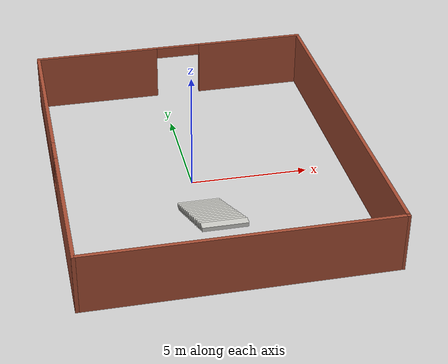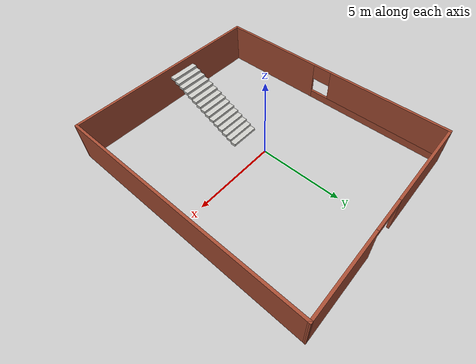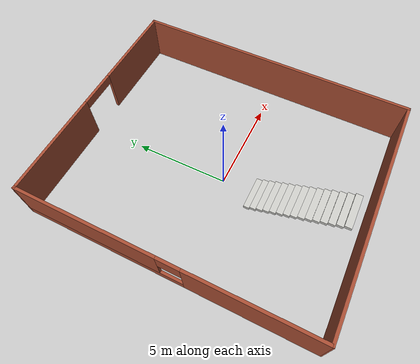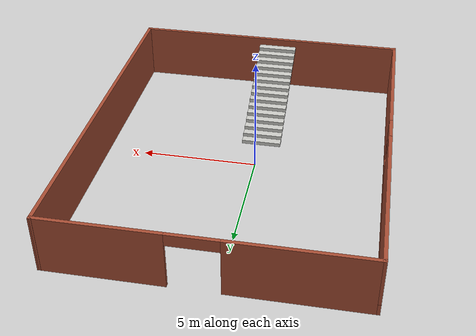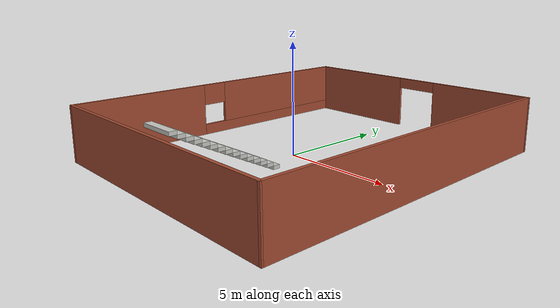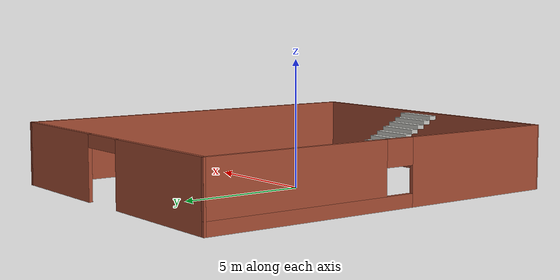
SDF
<?xml version='1.0'?>
<sdf version='1.6'>
  <model name='botenv1'>
    <pose frame=''>0.529 0.293031 0 0 -0 0</pose>
    <link name='Stairs_2'>
      <visual name='Stairs_2_Visual_0'>
        <pose frame=''>-0.549734 -2.00833 0.083333 0 -0 0</pose>
        <geometry>
          <box>
            <size>1.75 0.334 0.166667</size>
          </box>
        </geometry>
        <material>
          <script>
            <uri>file://media/materials/scripts/gazebo.material</uri>
            <name>Gazebo/CeilingTiled</name>
          </script>
          <ambient>0.760784 0.662745 0.627451 1</ambient>
        </material>
      </visual>
      <collision name='Stairs_2_Collision_0'>
        <geometry>
          <box>
            <size>1.75 0.334 0.166667</size>
          </box>
        </geometry>
        <pose frame=''>-0.549734 -2.00833 0.083333 0 -0 0</pose>
      </collision>
      <visual name='Stairs_2_Visual_1'>
        <pose frame=''>-0.549734 -2.34233 0.25 0 -0 0</pose>
        <geometry>
          <box>
            <size>1.75 0.334 0.166667</size>
          </box>
        </geometry>
        <material>
          <script>
            <uri>file://media/materials/scripts/gazebo.material</uri>
            <name>Gazebo/CeilingTiled</name>
          </script>
          <ambient>0.760784 0.662745 0.627451 1</ambient>
        </material>
      </visual>
      <collision name='Stairs_2_Collision_1'>
        <geometry>
          <box>
            <size>1.75 0.334 0.166667</size>
          </box>
        </geometry>
        <pose frame=''>-0.549734 -2.34233 0.25 0 -0 0</pose>
      </collision>
      <visual name='Stairs_2_Visual_2'>
        <pose frame=''>-0.549734 -2.67633 0.416667 0 -0 0</pose>
        <geometry>
          <box>
            <size>1.75 0.334 0.166667</size>
          </box>
        </geometry>
        <material>
          <script>
            <uri>file://media/materials/scripts/gazebo.material</uri>
            <name>Gazebo/CeilingTiled</name>
          </script>
          <ambient>0.760784 0.662745 0.627451 1</ambient>
        </material>
      </visual>
      <collision name='Stairs_2_Collision_2'>
        <geometry>
          <box>
            <size>1.75 0.334 0.166667</size>
          </box>
        </geometry>
        <pose frame=''>-0.549734 -2.67633 0.416667 0 -0 0</pose>
      </collision>
      <visual name='Stairs_2_Visual_3'>
        <pose frame=''>-0.549734 -3.01033 0.583333 0 -0 0</pose>
        <geometry>
          <box>
            <size>1.75 0.334 0.166667</size>
          </box>
        </geometry>
        <material>
          <script>
            <uri>file://media/materials/scripts/gazebo.material</uri>
            <name>Gazebo/CeilingTiled</name>
          </script>
          <ambient>0.760784 0.662745 0.627451 1</ambient>
        </material>
      </visual>
      <collision name='Stairs_2_Collision_3'>
        <geometry>
          <box>
            <size>1.75 0.334 0.166667</size>
          </box>
        </geometry>
        <pose frame=''>-0.549734 -3.01033 0.583333 0 -0 0</pose>
      </collision>
      <visual name='Stairs_2_Visual_4'>
        <pose frame=''>-0.549734 -3.34433 0.75 0 -0 0</pose>
        <geometry>
          <box>
            <size>1.75 0.334 0.166667</size>
          </box>
        </geometry>
        <material>
          <script>
            <uri>file://media/materials/scripts/gazebo.material</uri>
            <name>Gazebo/CeilingTiled</name>
          </script>
          <ambient>0.760784 0.662745 0.627451 1</ambient>
        </material>
      </visual>
      <collision name='Stairs_2_Collision_4'>
        <geometry>
          <box>
            <size>1.75 0.334 0.166667</size>
          </box>
        </geometry>
        <pose frame=''>-0.549734 -3.34433 0.75 0 -0 0</pose>
      </collision>
      <visual name='Stairs_2_Visual_5'>
        <pose frame=''>-0.549734 -3.67833 0.916667 0 -0 0</pose>
        <geometry>
          <box>
            <size>1.75 0.334 0.166667</size>
          </box>
        </geometry>
        <material>
          <script>
            <uri>file://media/materials/scripts/gazebo.material</uri>
            <name>Gazebo/CeilingTiled</name>
          </script>
          <ambient>0.760784 0.662745 0.627451 1</ambient>
        </material>
      </visual>
      <collision name='Stairs_2_Collision_5'>
        <geometry>
          <box>
            <size>1.75 0.334 0.166667</size>
          </box>
        </geometry>
        <pose frame=''>-0.549734 -3.67833 0.916667 0 -0 0</pose>
      </collision>
      <visual name='Stairs_2_Visual_6'>
        <pose frame=''>-0.549734 -4.01233 1.08333 0 -0 0</pose>
        <geometry>
          <box>
            <size>1.75 0.334 0.166667</size>
          </box>
        </geometry>
        <material>
          <script>
            <uri>file://media/materials/scripts/gazebo.material</uri>
            <name>Gazebo/CeilingTiled</name>
          </script>
          <ambient>0.760784 0.662745 0.627451 1</ambient>
        </material>
      </visual>
      <collision name='Stairs_2_Collision_6'>
        <geometry>
          <box>
            <size>1.75 0.334 0.166667</size>
          </box>
        </geometry>
        <pose frame=''>-0.549734 -4.01233 1.08333 0 -0 0</pose>
      </collision>
      <visual name='Stairs_2_Visual_7'>
        <pose frame=''>-0.549734 -4.34633 1.25 0 -0 0</pose>
        <geometry>
          <box>
            <size>1.75 0.334 0.166667</size>
          </box>
        </geometry>
        <material>
          <script>
            <uri>file://media/materials/scripts/gazebo.material</uri>
            <name>Gazebo/CeilingTiled</name>
          </script>
          <ambient>0.760784 0.662745 0.627451 1</ambient>
        </material>
      </visual>
      <collision name='Stairs_2_Collision_7'>
        <geometry>
          <box>
            <size>1.75 0.334 0.166667</size>
          </box>
        </geometry>
        <pose frame=''>-0.549734 -4.34633 1.25 0 -0 0</pose>
      </collision>
      <visual name='Stairs_2_Visual_8'>
        <pose frame=''>-0.549734 -4.68033 1.41667 0 -0 0</pose>
        <geometry>
          <box>
            <size>1.75 0.334 0.166667</size>
          </box>
        </geometry>
        <material>
          <script>
            <uri>file://media/materials/scripts/gazebo.material</uri>
            <name>Gazebo/CeilingTiled</name>
          </script>
          <ambient>0.760784 0.662745 0.627451 1</ambient>
        </material>
      </visual>
      <collision name='Stairs_2_Collision_8'>
        <geometry>
          <box>
            <size>1.75 0.334 0.166667</size>
          </box>
        </geometry>
        <pose frame=''>-0.549734 -4.68033 1.41667 0 -0 0</pose>
      </collision>
      <visual name='Stairs_2_Visual_9'>
        <pose frame=''>-0.549734 -5.01433 1.58333 0 -0 0</pose>
        <geometry>
          <box>
            <size>1.75 0.334 0.166667</size>
          </box>
        </geometry>
        <material>
          <script>
            <uri>file://media/materials/scripts/gazebo.material</uri>
            <name>Gazebo/CeilingTiled</name>
          </script>
          <ambient>0.760784 0.662745 0.627451 1</ambient>
        </material>
      </visual>
      <collision name='Stairs_2_Collision_9'>
        <geometry>
          <box>
            <size>1.75 0.334 0.166667</size>
          </box>
        </geometry>
        <pose frame=''>-0.549734 -5.01433 1.58333 0 -0 0</pose>
      </collision>
      <visual name='Stairs_2_Visual_10'>
        <pose frame=''>-0.549734 -5.34833 1.75 0 -0 0</pose>
        <geometry>
          <box>
            <size>1.75 0.334 0.166667</size>
          </box>
        </geometry>
        <material>
          <script>
            <uri>file://media/materials/scripts/gazebo.material</uri>
            <name>Gazebo/CeilingTiled</name>
          </script>
          <ambient>0.760784 0.662745 0.627451 1</ambient>
        </material>
      </visual>
      <collision name='Stairs_2_Collision_10'>
        <geometry>
          <box>
            <size>1.75 0.334 0.166667</size>
          </box>
        </geometry>
        <pose frame=''>-0.549734 -5.34833 1.75 0 -0 0</pose>
      </collision>
      <visual name='Stairs_2_Visual_11'>
        <pose frame=''>-0.549734 -5.68233 1.91667 0 -0 0</pose>
        <geometry>
          <box>
            <size>1.75 0.334 0.166667</size>
          </box>
        </geometry>
        <material>
          <script>
            <uri>file://media/materials/scripts/gazebo.material</uri>
            <name>Gazebo/CeilingTiled</name>
          </script>
          <ambient>0.760784 0.662745 0.627451 1</ambient>
        </material>
      </visual>
      <collision name='Stairs_2_Collision_11'>
        <geometry>
          <box>
            <size>1.75 0.334 0.166667</size>
          </box>
        </geometry>
        <pose frame=''>-0.549734 -5.68233 1.91667 0 -0 0</pose>
      </collision>
      <visual name='Stairs_2_Visual_12'>
        <pose frame=''>-0.549734 -6.01633 2.08333 0 -0 0</pose>
        <geometry>
          <box>
            <size>1.75 0.334 0.166667</size>
          </box>
        </geometry>
        <material>
          <script>
            <uri>file://media/materials/scripts/gazebo.material</uri>
            <name>Gazebo/CeilingTiled</name>
          </script>
          <ambient>0.760784 0.662745 0.627451 1</ambient>
        </material>
      </visual>
      <collision name='Stairs_2_Collision_12'>
        <geometry>
          <box>
            <size>1.75 0.334 0.166667</size>
          </box>
        </geometry>
        <pose frame=''>-0.549734 -6.01633 2.08333 0 -0 0</pose>
      </collision>
      <visual name='Stairs_2_Visual_13'>
        <pose frame=''>-0.549734 -6.35033 2.25 0 -0 0</pose>
        <geometry>
          <box>
            <size>1.75 0.334 0.166667</size>
          </box>
        </geometry>
        <material>
          <script>
            <uri>file://media/materials/scripts/gazebo.material</uri>
            <name>Gazebo/CeilingTiled</name>
          </script>
          <ambient>0.760784 0.662745 0.627451 1</ambient>
        </material>
      </visual>
      <collision name='Stairs_2_Collision_13'>
        <geometry>
          <box>
            <size>1.75 0.334 0.166667</size>
          </box>
        </geometry>
        <pose frame=''>-0.549734 -6.35033 2.25 0 -0 0</pose>
      </collision>
      <visual name='Stairs_2_Visual_14'>
        <pose frame=''>-0.549734 -6.68433 2.41667 0 -0 0</pose>
        <geometry>
          <box>
            <size>1.75 0.334 0.166667</size>
          </box>
        </geometry>
        <material>
          <script>
            <uri>file://media/materials/scripts/gazebo.material</uri>
            <name>Gazebo/CeilingTiled</name>
          </script>
          <ambient>0.760784 0.662745 0.627451 1</ambient>
        </material>
      </visual>
      <collision name='Stairs_2_Collision_14'>
        <geometry>
          <box>
            <size>1.75 0.334 0.166667</size>
          </box>
        </geometry>
        <pose frame=''>-0.549734 -6.68433 2.41667 0 -0 0</pose>
      </collision>
    </link>
    <link name='Wall_11'>
      <pose frame=''>0 7.53397 0 0 0 -3.13611</pose>
      <visual name='Wall_11_Visual_0'>
        <pose frame=''>-3.80989 0 1.25 0 -0 0</pose>
        <geometry>
          <box>
            <size>4.9244 0.15 2.5</size>
          </box>
        </geometry>
        <material>
          <script>
            <uri>file://media/materials/scripts/gazebo.material</uri>
            <name>Gazebo/Bricks</name>
          </script>
          <ambient>1 1 1 1</ambient>
        </material>
      </visual>
      <collision name='Wall_11_Collision_0'>
        <geometry>
          <box>
            <size>4.9244 0.15 2.5</size>
          </box>
        </geometry>
        <pose frame=''>-3.80989 0 1.25 0 -0 0</pose>
      </collision>
      <visual name='Wall_11_Visual_1'>
        <pose frame=''>3.47078 0 1.25 0 -0 0</pose>
        <geometry>
          <box>
            <size>5.60263 0.15 2.5</size>
          </box>
        </geometry>
        <material>
          <script>
            <uri>file://media/materials/scripts/gazebo.material</uri>
            <name>Gazebo/Bricks</name>
          </script>
          <ambient>1 1 1 1</ambient>
        </material>
      </visual>
      <collision name='Wall_11_Collision_1'>
        <geometry>
          <box>
            <size>5.60263 0.15 2.5</size>
          </box>
        </geometry>
        <pose frame=''>3.47078 0 1.25 0 -0 0</pose>
      </collision>
      <visual name='Wall_11_Visual_2'>
        <pose frame=''>-0.339116 0 2.25 0 -0 0</pose>
        <geometry>
          <box>
            <size>2.01715 0.15 0.5</size>
          </box>
        </geometry>
        <material>
          <script>
            <uri>file://media/materials/scripts/gazebo.material</uri>
            <name>Gazebo/Bricks</name>
          </script>
          <ambient>1 1 1 1</ambient>
        </material>
      </visual>
      <collision name='Wall_11_Collision_2'>
        <geometry>
          <box>
            <size>2.01715 0.15 0.5</size>
          </box>
        </geometry>
        <pose frame=''>-0.339116 0 2.25 0 -0 0</pose>
      </collision>
    </link>
    <link name='Wall_15'>
      <collision name='Wall_15_Collision'>
        <geometry>
          <box>
            <size>15.2861 0.15 2.5</size>
          </box>
        </geometry>
        <pose frame=''>0 0 1.25 0 -0 0</pose>
      </collision>
      <visual name='Wall_15_Visual'>
        <pose frame=''>0 0 1.25 0 -0 0</pose>
        <geometry>
          <box>
            <size>15.2861 0.15 2.5</size>
          </box>
        </geometry>
        <material>
          <script>
            <uri>file://media/materials/scripts/gazebo.material</uri>
            <name>Gazebo/Bricks</name>
          </script>
          <ambient>1 1 1 1</ambient>
        </material>
      </visual>
      <pose frame=''>6.189 -3.1e-05 0 0 -0 1.56974</pose>
    </link>
    <link name='Wall_5'>
      <collision name='Wall_5_Collision'>
        <geometry>
          <box>
            <size>12.5 0.15 2.5</size>
          </box>
        </geometry>
        <pose frame=''>0 0 1.25 0 -0 0</pose>
      </collision>
      <visual name='Wall_5_Visual'>
        <pose frame=''>0 0 1.25 0 -0 0</pose>
        <geometry>
          <box>
            <size>12.5 0.15 2.5</size>
          </box>
        </geometry>
        <material>
          <script>
            <uri>file://media/materials/scripts/gazebo.material</uri>
            <name>Gazebo/Bricks</name>
          </script>
          <ambient>1 1 1 1</ambient>
        </material>
      </visual>
      <pose frame=''>0.006 -7.56803 0 0 -0 0</pose>
    </link>
    <link name='Wall_8'>
      <pose frame=''>-6.183 -0.034031 0 0 -0 1.57265</pose>
      <visual name='Wall_8_Visual_0'>
        <pose frame=''>-4.338 0 1.25 0 -0 0</pose>
        <geometry>
          <box>
            <size>6.54244 0.15 2.5</size>
          </box>
        </geometry>
        <material>
          <script>
            <uri>file://media/materials/scripts/gazebo.material</uri>
            <name>Gazebo/Bricks</name>
          </script>
          <ambient>1 1 1 1</ambient>
        </material>
      </visual>
      <collision name='Wall_8_Collision_0'>
        <geometry>
          <box>
            <size>6.54244 0.15 2.5</size>
          </box>
        </geometry>
        <pose frame=''>-4.338 0 1.25 0 -0 0</pose>
      </collision>
      <visual name='Wall_8_Visual_1'>
        <pose frame=''>3.27122 0 0.25 0 -0 0</pose>
        <geometry>
          <box>
            <size>8.676 0.15 0.5</size>
          </box>
        </geometry>
        <material>
          <script>
            <uri>file://media/materials/scripts/gazebo.material</uri>
            <name>Gazebo/Bricks</name>
          </script>
          <ambient>1 1 1 1</ambient>
        </material>
      </visual>
      <collision name='Wall_8_Collision_1'>
        <geometry>
          <box>
            <size>8.676 0.15 0.5</size>
          </box>
        </geometry>
        <pose frame=''>3.27122 0 0.25 0 -0 0</pose>
      </collision>
      <visual name='Wall_8_Visual_2'>
        <pose frame=''>3.86872 0 1.5 0 -0 0</pose>
        <geometry>
          <box>
            <size>7.481 0.15 2</size>
          </box>
        </geometry>
        <material>
          <script>
            <uri>file://media/materials/scripts/gazebo.material</uri>
            <name>Gazebo/Bricks</name>
          </script>
          <ambient>1 1 1 1</ambient>
        </material>
      </visual>
      <collision name='Wall_8_Collision_2'>
        <geometry>
          <box>
            <size>7.481 0.15 2</size>
          </box>
        </geometry>
        <pose frame=''>3.86872 0 1.5 0 -0 0</pose>
      </collision>
      <visual name='Wall_8_Visual_3'>
        <pose frame=''>-0.469281 0 2 0 -0 0</pose>
        <geometry>
          <box>
            <size>1.195 0.15 1</size>
          </box>
        </geometry>
        <material>
          <script>
            <uri>file://media/materials/scripts/gazebo.material</uri>
            <name>Gazebo/Bricks</name>
          </script>
          <ambient>1 1 1 1</ambient>
        </material>
      </visual>
      <collision name='Wall_8_Collision_3'>
        <geometry>
          <box>
            <size>1.195 0.15 1</size>
          </box>
        </geometry>
        <pose frame=''>-0.469281 0 2 0 -0 0</pose>
      </collision>
    </link>
    <static>1</static>
  </model>
</sdf>
